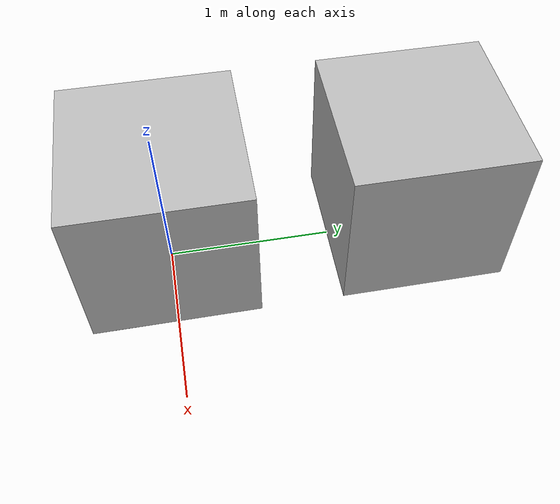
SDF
<?xml version="1.0" ?>
<sdf version="1.4">
    <world name="default">
        <scene>
            <ambient>0.1 0.1 0.1 1</ambient>
            <background>0 0 0 1</background>
            <shadows>false</shadows>
        </scene>
        <physics type="ode">
            <gravity>0 0 -9.8</gravity>
            <ode>
                <solver>
                    <type>quick</type>
                    <iters>100</iters>
                    <sor>1.3</sor>
                </solver>
            </ode>
            <max_step_size>0.01</max_step_size>
        </physics>
        <!-- Ground Plane -->
        <model name="plane1_model">
            <link name="body">
                <inertial>
                    <inertia>
                        <ixx>1</ixx>
                        <ixy>0</ixy>
                        <ixz>0</ixz>
                        <iyy>1</iyy>
                        <iyz>0</iyz>
                        <izz>1</izz>
                    </inertia>
                    <mass>1.0</mass>
                </inertial>
                <collision name="geom">
                    <geometry>
                        <plane>
                            <normal>0 0 1</normal>
                        </plane>
                    </geometry>
                    <surface>
                        <friction>
                            <ode>
                                <mu>0</mu>
                                <mu2>0</mu2>
                            </ode>
                        </friction>
                    </surface>
                </collision>
                <visual name="visual">
                    <geometry>
                        <plane>
                            <normal>0 0 1</normal>
                        </plane>
                    </geometry>
                    <material>
                        <script>Gazebo/Gold</script>
                    </material>
                    <cast_shadows>false</cast_shadows>
                </visual>
            </link>
            <static>true</static>
        </model>
        <model name="box">
            <link name="link">
                <pose>0 0 0.5 0 0 0</pose>
                <inertial>
                    <inertia>
                        <ixx>1</ixx>
                        <ixy>0</ixy>
                        <ixz>0</ixz>
                        <iyy>1</iyy>
                        <iyz>0</iyz>
                        <izz>1</izz>
                    </inertia>
                    <mass>1.0</mass>
                </inertial>
                <collision name="collision">
                    <geometry>
                        <box>
                            <size>1 1 1</size>
                        </box>
                    </geometry>
                    <surface>
                        <friction>
                            <ode>
                                <mu>0</mu>
                                <mu2>0</mu2>
                            </ode>
                        </friction>
                    </surface>
                </collision>
                <visual name="visual">
                    <geometry>
                        <box>
                            <size>1 1 1</size>
                        </box>
                    </geometry>
                    <material>
                        <script>Gazebo/WoodPallet</script>
                    </material>
                </visual>
                <sensor name="cam_sensor1" type="camera">
                    <pose>0 0 0 0 0 1.57</pose>
                    <camera>
                        <horizontal_fov>1.57</horizontal_fov>
                        <image>
                            <width>640</width>
                            <height>480</height>
                            <format>R8G8B8</format>
                        </image>
                        <clip near="0.5" far="5" />
                    </camera>
                    <plugin name="camera_dump" filename="libcamera_dump.so" />
                    <always_on>1</always_on>
                    <update_rate>10</update_rate>
                </sensor>
            </link>
            <plugin name="camera_move" filename="libcamera_move.so" />
        </model>
        <model name="box2">
            <pose>0 1.5 0 0 0 0</pose>
            <link name="body">
                <pose>0 0 0.5 0 0 0</pose>
                <inertial>
                    <inertia>
                        <ixx>1</ixx>
                        <ixy>0</ixy>
                        <ixz>0</ixz>
                        <iyy>1</iyy>
                        <iyz>0</iyz>
                        <izz>1</izz>
                    </inertia>
                    <mass>1.0</mass>
                </inertial>
                <collision name="collision">
                    <geometry>
                        <box>
                            <size>1 1 1</size>
                        </box>
                    </geometry>
                </collision>
                <visual name="visual">
                    <geometry>
                        <box>
                            <size>1 1 1</size>
                        </box>
                    </geometry>
                    <material>
                        <script>Gazebo/WoodPallet</script>
                    </material>
                </visual>
            </link>
        </model>
        <light type="directional" name="sun">
            <pose>0 0 10 0 0 0</pose>
            <diffuse>.8 .8 .8 1</diffuse>
            <specular>.1 .1 .1 1</specular>
            <attenuation>
                <range>10</range>
                <linear>0.01</linear>
                <constant>0.8</constant>
                <quadratic>0.0</quadratic>
            </attenuation>
            <direction>0 .5 -.5</direction>
            <cast_shadows>true</cast_shadows>
        </light>
    </world>
</sdf>
